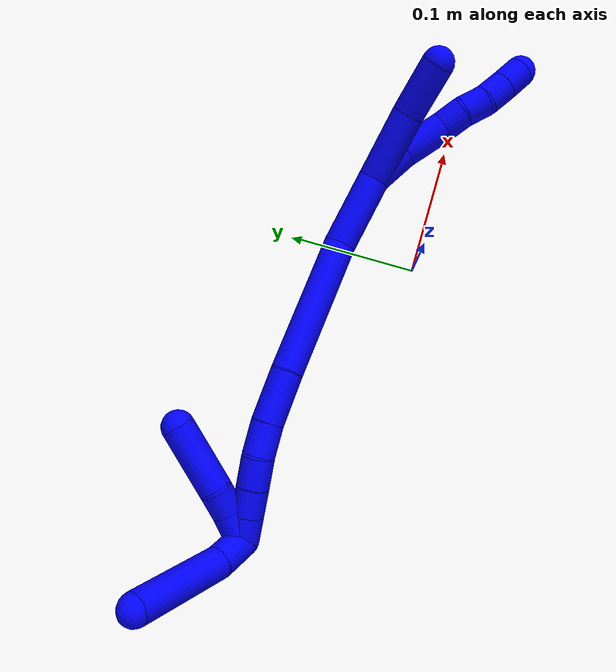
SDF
<sdf version="1.7">
 <world name="default">
  <model name="photoneo_s_sensor">
   <static>1</static>
   <pose>0 0 2 1.57079 1.57079 3.14159</pose>
   <link name="link">
    <inertial><mass>0.1</mass></inertial>
    <sensor name="sensor" type="depth">
     <update_rate>30</update_rate>
     <camera>
      <horizontal_fov>1.22</horizontal_fov>
      <image><width>1920</width><height>1200</height><format>B8G8R8</format></image>
      <clip><near>0.1</near><far>4</far></clip>
      <depth_camera><output>points</output></depth_camera>
     </camera>
     <plugin name="camera_plugin" filename="libgazebo_ros_depth_camera.so">
      <baseline>0.2</baseline>
      <alwaysOn>1</alwaysOn>
      <updateRate>0.0</updateRate>
      <cameraName>camera_ir</cameraName>
      <imageTopicName>/camera/color/image_raw</imageTopicName>
      <cameraInfoTopicName>/camera/color/camera_info</cameraInfoTopicName>
      <depthImageTopicName>/camera/depth/image_raw</depthImageTopicName>
      <depthImageCameraInfoTopicName>/camera/depth/camera_info</depthImageCameraInfoTopicName>
      <pointCloudTopicName>/camera/depth/points</pointCloudTopicName>
      <frameName>fr_optical</frameName>
      <pointCloudCutoff>0.1</pointCloudCutoff>
      <pointCloudCutoffMax>2.0</pointCloudCutoffMax>
      <distortionK1>0</distortionK1>
      <distortionK2>0</distortionK2>
      <distortionK3>0</distortionK3>
      <distortionT1>0</distortionT1>
      <distortionT2>0</distortionT2>
      <CxPrime>0</CxPrime>
      <Cx>0</Cx>
      <Cy>0</Cy>
      <focalLength>0</focalLength>
      <hackBaseline>0</hackBaseline>
     </plugin>
    </sensor>
   </link>
  </model>
  <model name="bin">
   <static>1</static>
   <link name="bottom">
    <collision name="collision-bottom">
     <pose>0 0 -0.01 0 -0 0</pose>
     <geometry><box><size>0.8 0.6 0.02</size></box></geometry>
     <surface>
      <friction><ode><mu>100</mu><mu2>100</mu2></ode></friction>
      <contact><collide_bitmask>65535</collide_bitmask></contact>
     </surface>
    </collision>
   </link>
   <link name="west_wall">
    <collision name="collision-west_wall">
     <pose>-0.41 0 0.1 0 -0 0</pose>
     <geometry><box><size>0.02 0.6 0.2</size></box></geometry>
     <surface>
      <friction><ode><mu>100</mu><mu2>100</mu2></ode></friction>
      <contact><collide_bitmask>65535</collide_bitmask></contact>
     </surface>
    </collision>
   </link>
   <link name="east_wall">
    <collision name="collision-east_wall">
     <pose>0.41 0 0.1 0 -0 0</pose>
     <geometry><box><size>0.02 0.6 0.2</size></box></geometry>
     <surface>
      <friction><ode><mu>100</mu><mu2>100</mu2></ode></friction>
      <contact><collide_bitmask>65535</collide_bitmask></contact>
     </surface>
    </collision>
   </link>
   <link name="south_wall">
    <collision name="collision-south_wall">
     <pose>0 -0.31 0.1 0 -0 0</pose>
     <geometry><box><size>0.8 0.02 0.2</size></box></geometry>
     <surface>
      <friction><ode><mu>100</mu><mu2>100</mu2></ode></friction>
      <contact><collide_bitmask>65535</collide_bitmask></contact>
     </surface>
    </collision>
   </link>
   <link name="north_wall">
    <collision name="collision-north_wall">
     <pose>0 0.31 0.1 0 -0 0</pose>
     <geometry><box><size>0.8 0.02 0.2</size></box></geometry>
     <surface>
      <friction><ode><mu>100</mu><mu2>100</mu2></ode></friction>
      <contact><collide_bitmask>65535</collide_bitmask></contact>
     </surface>
    </collision>
   </link>
  </model>
  <model name="1">
   <static>0</static>
   <link name="1">
    <collision name="collision-cylinder-e_1_2_8">
     <pose>0.004807 0.000513 -0.015629 -3.10876 0.298252 -2.9239</pose>
     <geometry><cylinder><radius>0.0125</radius><length>0.032719</length></cylinder></geometry>
     <surface>
      <friction><ode><mu>1.16</mu><mu2>1.16</mu2><slip1>0</slip1><slip2>0</slip2></ode></friction>
      <contact><ode><kp>1e+06</kp><kd>1</kd><max_vel>0</max_vel><min_depth>0.001</min_depth></ode></contact>
     </surface>
    </collision>
    <visual name="visual-cylinder-e_1_2_8">
     <pose>0.004807 0.000513 -0.015629 -3.10876 0.298252 -2.9239</pose>
     <geometry><cylinder><radius>0.0125</radius><length>0.032719</length></cylinder></geometry>
     <material><ambient>0 0 1 1</ambient></material>
    </visual>
    <collision name="collision-cylinder-e_2_8_9">
     <pose>0.016178 0.004783 -0.048291 -2.92452 0.359913 -2.0623</pose>
     <geometry><cylinder><radius>0.0125</radius><length>0.037274</length></cylinder></geometry>
     <surface>
      <friction><ode><mu>1.16</mu><mu2>1.16</mu2><slip1>0</slip1><slip2>0</slip2></ode></friction>
      <contact><ode><kp>1e+06</kp><kd>1</kd><max_vel>0</max_vel><min_depth>0.001</min_depth></ode></contact>
     </surface>
    </collision>
    <visual name="visual-cylinder-e_2_8_9">
     <pose>0.016178 0.004783 -0.048291 -2.92452 0.359913 -2.0623</pose>
     <geometry><cylinder><radius>0.0125</radius><length>0.037274</length></cylinder></geometry>
     <material><ambient>0 0 1 1</ambient></material>
    </visual>
    <collision name="collision-cylinder-e_3_9_10">
     <pose>0.025069 0.011528 -0.074582 -2.82934 0.23479 -1.28606</pose>
     <geometry><cylinder><radius>0.0125</radius><length>0.020004</length></cylinder></geometry>
     <surface>
      <friction><ode><mu>1.16</mu><mu2>1.16</mu2><slip1>0</slip1><slip2>0</slip2></ode></friction>
      <contact><ode><kp>1e+06</kp><kd>1</kd><max_vel>0</max_vel><min_depth>0.001</min_depth></ode></contact>
     </surface>
    </collision>
    <visual name="visual-cylinder-e_3_9_10">
     <pose>0.025069 0.011528 -0.074582 -2.82934 0.23479 -1.28606</pose>
     <geometry><cylinder><radius>0.0125</radius><length>0.020004</length></cylinder></geometry>
     <material><ambient>0 0 1 1</ambient></material>
    </visual>
    <collision name="collision-cylinder-e_4_10_11">
     <pose>0.031736 0.016926 -0.092522 -2.87096 0.448916 -2.06613</pose>
     <geometry><cylinder><radius>0.0125</radius><length>0.020002</length></cylinder></geometry>
     <surface>
      <friction><ode><mu>1.16</mu><mu2>1.16</mu2><slip1>0</slip1><slip2>0</slip2></ode></friction>
      <contact><ode><kp>1e+06</kp><kd>1</kd><max_vel>0</max_vel><min_depth>0.001</min_depth></ode></contact>
     </surface>
    </collision>
    <visual name="visual-cylinder-e_4_10_11">
     <pose>0.031736 0.016926 -0.092522 -2.87096 0.448916 -2.06613</pose>
     <geometry><cylinder><radius>0.0125</radius><length>0.020002</length></cylinder></geometry>
     <material><ambient>0 0 1 1</ambient></material>
    </visual>
    <collision name="collision-cylinder-e_5_11_12">
     <pose>0.039682 0.019347 -0.110531 -3.14026 0.368896 -3.13446</pose>
     <geometry><cylinder><radius>0.0125</radius><length>0.02</length></cylinder></geometry>
     <surface>
      <friction><ode><mu>1.16</mu><mu2>1.16</mu2><slip1>0</slip1><slip2>0</slip2></ode></friction>
      <contact><ode><kp>1e+06</kp><kd>1</kd><max_vel>0</max_vel><min_depth>0.001</min_depth></ode></contact>
     </surface>
    </collision>
    <visual name="visual-cylinder-e_5_11_12">
     <pose>0.039682 0.019347 -0.110531 -3.14026 0.368896 -3.13446</pose>
     <geometry><cylinder><radius>0.0125</radius><length>0.02</length></cylinder></geometry>
     <material><ambient>0 0 1 1</ambient></material>
    </visual>
    <collision name="collision-cylinder-e_6_12_6">
     <pose>0.046698 0.019055 -0.129254 3.10926 0.347968 2.95812</pose>
     <geometry><cylinder><radius>0.0125</radius><length>0.02</length></cylinder></geometry>
     <surface>
      <friction><ode><mu>1.16</mu><mu2>1.16</mu2><slip1>0</slip1><slip2>0</slip2></ode></friction>
      <contact><ode><kp>1e+06</kp><kd>1</kd><max_vel>0</max_vel><min_depth>0.001</min_depth></ode></contact>
     </surface>
    </collision>
    <visual name="visual-cylinder-e_6_12_6">
     <pose>0.046698 0.019055 -0.129254 3.10926 0.347968 2.95812</pose>
     <geometry><cylinder><radius>0.0125</radius><length>0.02</length></cylinder></geometry>
     <material><ambient>0 0 1 1</ambient></material>
    </visual>
    <collision name="collision-cylinder-e_1_2_13">
     <pose>-0.006639 0.005743 -0.026944 -2.93157 -0.23646 1.69008</pose>
     <geometry><cylinder><radius>0.0125</radius><length>0.056676</length></cylinder></geometry>
     <surface>
      <friction><ode><mu>1.16</mu><mu2>1.16</mu2><slip1>0</slip1><slip2>0</slip2></ode></friction>
      <contact><ode><kp>1e+06</kp><kd>1</kd><max_vel>0</max_vel><min_depth>0.001</min_depth></ode></contact>
     </surface>
    </collision>
    <visual name="visual-cylinder-e_1_2_13">
     <pose>-0.006639 0.005743 -0.026944 -2.93157 -0.23646 1.69008</pose>
     <geometry><cylinder><radius>0.0125</radius><length>0.056676</length></cylinder></geometry>
     <material><ambient>0 0 1 1</ambient></material>
    </visual>
    <collision name="collision-cylinder-e_2_13_5">
     <pose>-0.019449 0.019551 -0.073023 -2.74272 -0.288911 1.24766</pose>
     <geometry><cylinder><radius>0.0125</radius><length>0.043324</length></cylinder></geometry>
     <surface>
      <friction><ode><mu>1.16</mu><mu2>1.16</mu2><slip1>0</slip1><slip2>0</slip2></ode></friction>
      <contact><ode><kp>1e+06</kp><kd>1</kd><max_vel>0</max_vel><min_depth>0.001</min_depth></ode></contact>
     </surface>
    </collision>
    <visual name="visual-cylinder-e_2_13_5">
     <pose>-0.019449 0.019551 -0.073023 -2.74272 -0.288911 1.24766</pose>
     <geometry><cylinder><radius>0.0125</radius><length>0.043324</length></cylinder></geometry>
     <material><ambient>0 0 1 1</ambient></material>
    </visual>
    <collision name="collision-cylinder-e_1_2_14">
     <pose>0.00085 0.003593 0.029465 -0.121332 0.028628 -0.001739</pose>
     <geometry><cylinder><radius>0.0125</radius><length>0.059391</length></cylinder></geometry>
     <surface>
      <friction><ode><mu>1.16</mu><mu2>1.16</mu2><slip1>0</slip1><slip2>0</slip2></ode></friction>
      <contact><ode><kp>1e+06</kp><kd>1</kd><max_vel>0</max_vel><min_depth>0.001</min_depth></ode></contact>
     </surface>
    </collision>
    <visual name="visual-cylinder-e_1_2_14">
     <pose>0.00085 0.003593 0.029465 -0.121332 0.028628 -0.001739</pose>
     <geometry><cylinder><radius>0.0125</radius><length>0.059391</length></cylinder></geometry>
     <material><ambient>0 0 1 1</ambient></material>
    </visual>
    <collision name="collision-cylinder-e_2_14_15">
     <pose>0.00184 0.023548 0.110776 -0.305702 0.002573 -0.000396</pose>
     <geometry><cylinder><radius>0.0125</radius><length>0.108734</length></cylinder></geometry>
     <surface>
      <friction><ode><mu>1.16</mu><mu2>1.16</mu2><slip1>0</slip1><slip2>0</slip2></ode></friction>
      <contact><ode><kp>1e+06</kp><kd>1</kd><max_vel>0</max_vel><min_depth>0.001</min_depth></ode></contact>
     </surface>
    </collision>
    <visual name="visual-cylinder-e_2_14_15">
     <pose>0.00184 0.023548 0.110776 -0.305702 0.002573 -0.000396</pose>
     <geometry><cylinder><radius>0.0125</radius><length>0.108734</length></cylinder></geometry>
     <material><ambient>0 0 1 1</ambient></material>
    </visual>
    <collision name="collision-cylinder-e_3_15_16">
     <pose>0.003372 0.04522 0.182289 -0.263693 0.068227 -0.009051</pose>
     <geometry><cylinder><radius>0.0125</radius><length>0.040836</length></cylinder></geometry>
     <surface>
      <friction><ode><mu>1.16</mu><mu2>1.16</mu2><slip1>0</slip1><slip2>0</slip2></ode></friction>
      <contact><ode><kp>1e+06</kp><kd>1</kd><max_vel>0</max_vel><min_depth>0.001</min_depth></ode></contact>
     </surface>
    </collision>
    <visual name="visual-cylinder-e_3_15_16">
     <pose>0.003372 0.04522 0.182289 -0.263693 0.068227 -0.009051</pose>
     <geometry><cylinder><radius>0.0125</radius><length>0.040836</length></cylinder></geometry>
     <material><ambient>0 0 1 1</ambient></material>
    </visual>
    <collision name="collision-cylinder-e_4_16_17">
     <pose>0.00679 0.054354 0.214076 -0.305639 0.158083 -0.024398</pose>
     <geometry><cylinder><radius>0.0125</radius><length>0.025742</length></cylinder></geometry>
     <surface>
      <friction><ode><mu>1.16</mu><mu2>1.16</mu2><slip1>0</slip1><slip2>0</slip2></ode></friction>
      <contact><ode><kp>1e+06</kp><kd>1</kd><max_vel>0</max_vel><min_depth>0.001</min_depth></ode></contact>
     </surface>
    </collision>
    <visual name="visual-cylinder-e_4_16_17">
     <pose>0.00679 0.054354 0.214076 -0.305639 0.158083 -0.024398</pose>
     <geometry><cylinder><radius>0.0125</radius><length>0.025742</length></cylinder></geometry>
     <material><ambient>0 0 1 1</ambient></material>
    </visual>
    <collision name="collision-cylinder-e_5_17_18">
     <pose>0.012561 0.060519 0.23694 -0.214573 0.328263 -0.035671</pose>
     <geometry><cylinder><radius>0.0125</radius><length>0.023228</length></cylinder></geometry>
     <surface>
      <friction><ode><mu>1.16</mu><mu2>1.16</mu2><slip1>0</slip1><slip2>0</slip2></ode></friction>
      <contact><ode><kp>1e+06</kp><kd>1</kd><max_vel>0</max_vel><min_depth>0.001</min_depth></ode></contact>
     </surface>
    </collision>
    <visual name="visual-cylinder-e_5_17_18">
     <pose>0.012561 0.060519 0.23694 -0.214573 0.328263 -0.035671</pose>
     <geometry><cylinder><radius>0.0125</radius><length>0.023228</length></cylinder></geometry>
     <material><ambient>0 0 1 1</ambient></material>
    </visual>
    <collision name="collision-cylinder-e_6_18_19">
     <pose>0.019872 0.064526 0.257441 -0.169061 0.345837 -0.029597</pose>
     <geometry><cylinder><radius>0.0125</radius><length>0.021046</length></cylinder></geometry>
     <surface>
      <friction><ode><mu>1.16</mu><mu2>1.16</mu2><slip1>0</slip1><slip2>0</slip2></ode></friction>
      <contact><ode><kp>1e+06</kp><kd>1</kd><max_vel>0</max_vel><min_depth>0.001</min_depth></ode></contact>
     </surface>
    </collision>
    <visual name="visual-cylinder-e_6_18_19">
     <pose>0.019872 0.064526 0.257441 -0.169061 0.345837 -0.029597</pose>
     <geometry><cylinder><radius>0.0125</radius><length>0.021046</length></cylinder></geometry>
     <material><ambient>0 0 1 1</ambient></material>
    </visual>
    <collision name="collision-cylinder-e_7_19_1">
     <pose>0.027075 0.067786 0.276932 -0.162341 0.353214 -0.029034</pose>
     <geometry><cylinder><radius>0.0125</radius><length>0.021023</length></cylinder></geometry>
     <surface>
      <friction><ode><mu>1.16</mu><mu2>1.16</mu2><slip1>0</slip1><slip2>0</slip2></ode></friction>
      <contact><ode><kp>1e+06</kp><kd>1</kd><max_vel>0</max_vel><min_depth>0.001</min_depth></ode></contact>
     </surface>
    </collision>
    <visual name="visual-cylinder-e_7_19_1">
     <pose>0.027075 0.067786 0.276932 -0.162341 0.353214 -0.029034</pose>
     <geometry><cylinder><radius>0.0125</radius><length>0.021023</length></cylinder></geometry>
     <material><ambient>0 0 1 1</ambient></material>
    </visual>
    <collision name="collision-cylinder-e_1_1_20">
     <pose>0.021256 0.064294 0.279809 2.50335 -0.83642 -1.86298</pose>
     <geometry><cylinder><radius>0.0125</radius><length>0.025476</length></cylinder></geometry>
     <surface>
      <friction><ode><mu>1.16</mu><mu2>1.16</mu2><slip1>0</slip1><slip2>0</slip2></ode></friction>
      <contact><ode><kp>1e+06</kp><kd>1</kd><max_vel>0</max_vel><min_depth>0.001</min_depth></ode></contact>
     </surface>
    </collision>
    <visual name="visual-cylinder-e_1_1_20">
     <pose>0.021256 0.064294 0.279809 2.50335 -0.83642 -1.86298</pose>
     <geometry><cylinder><radius>0.0125</radius><length>0.025476</length></cylinder></geometry>
     <material><ambient>0 0 1 1</ambient></material>
    </visual>
    <collision name="collision-cylinder-e_2_20_21">
     <pose>0.003453 0.05642 0.267784 2.6469 -0.957673 -2.23614</pose>
     <geometry><cylinder><radius>0.0125</radius><length>0.020416</length></cylinder></geometry>
     <surface>
      <friction><ode><mu>1.16</mu><mu2>1.16</mu2><slip1>0</slip1><slip2>0</slip2></ode></friction>
      <contact><ode><kp>1e+06</kp><kd>1</kd><max_vel>0</max_vel><min_depth>0.001</min_depth></ode></contact>
     </surface>
    </collision>
    <visual name="visual-cylinder-e_2_20_21">
     <pose>0.003453 0.05642 0.267784 2.6469 -0.957673 -2.23614</pose>
     <geometry><cylinder><radius>0.0125</radius><length>0.020416</length></cylinder></geometry>
     <material><ambient>0 0 1 1</ambient></material>
    </visual>
    <collision name="collision-cylinder-e_3_21_4">
     <pose>-0.024912 0.040294 0.250229 2.31919 -0.832858 -1.585</pose>
     <geometry><cylinder><radius>0.0125</radius><length>0.054108</length></cylinder></geometry>
     <surface>
      <friction><ode><mu>1.16</mu><mu2>1.16</mu2><slip1>0</slip1><slip2>0</slip2></ode></friction>
      <contact><ode><kp>1e+06</kp><kd>1</kd><max_vel>0</max_vel><min_depth>0.001</min_depth></ode></contact>
     </surface>
    </collision>
    <visual name="visual-cylinder-e_3_21_4">
     <pose>-0.024912 0.040294 0.250229 2.31919 -0.832858 -1.585</pose>
     <geometry><cylinder><radius>0.0125</radius><length>0.054108</length></cylinder></geometry>
     <material><ambient>0 0 1 1</ambient></material>
    </visual>
    <collision name="collision-cylinder-e_1_1_22">
     <pose>0.021766 0.075423 0.294941 -0.630697 -0.717657 0.243509</pose>
     <geometry><cylinder><radius>0.0125</radius><length>0.027204</length></cylinder></geometry>
     <surface>
      <friction><ode><mu>1.16</mu><mu2>1.16</mu2><slip1>0</slip1><slip2>0</slip2></ode></friction>
      <contact><ode><kp>1e+06</kp><kd>1</kd><max_vel>0</max_vel><min_depth>0.001</min_depth></ode></contact>
     </surface>
    </collision>
    <visual name="visual-cylinder-e_1_1_22">
     <pose>0.021766 0.075423 0.294941 -0.630697 -0.717657 0.243509</pose>
     <geometry><cylinder><radius>0.0125</radius><length>0.027204</length></cylinder></geometry>
     <material><ambient>0 0 1 1</ambient></material>
    </visual>
    <collision name="collision-cylinder-e_2_22_3">
     <pose>-0.016298 0.094335 0.32086 -0.630212 -0.927323 0.323137</pose>
     <geometry><cylinder><radius>0.0125</radius><length>0.072796</length></cylinder></geometry>
     <surface>
      <friction><ode><mu>1.16</mu><mu2>1.16</mu2><slip1>0</slip1><slip2>0</slip2></ode></friction>
      <contact><ode><kp>1e+06</kp><kd>1</kd><max_vel>0</max_vel><min_depth>0.001</min_depth></ode></contact>
     </surface>
    </collision>
    <visual name="visual-cylinder-e_2_22_3">
     <pose>-0.016298 0.094335 0.32086 -0.630212 -0.927323 0.323137</pose>
     <geometry><cylinder><radius>0.0125</radius><length>0.072796</length></cylinder></geometry>
     <material><ambient>0 0 1 1</ambient></material>
    </visual>
    <collision name="collision-sphere-3">
     <pose>-0.045417 0.107204 0.338502 0 -0 0</pose>
     <geometry><sphere><radius>0.0125</radius></sphere></geometry>
     <surface>
      <friction><ode><mu>1.16</mu><mu2>1.16</mu2><slip1>0</slip1><slip2>0</slip2></ode></friction>
      <contact><ode><kp>1e+06</kp><kd>1</kd><max_vel>0</max_vel><min_depth>0.001</min_depth></ode></contact>
     </surface>
    </collision>
    <visual name="visual-sphere-3">
     <pose>-0.045417 0.107204 0.338502 0 -0 0</pose>
     <geometry><sphere><radius>0.0125</radius></sphere></geometry>
     <material><ambient>0 0 1 1</ambient></material>
    </visual>
    <collision name="collision-sphere-22">
     <pose>0.012821 0.081466 0.303217 0 -0 0</pose>
     <geometry><sphere><radius>0.0125</radius></sphere></geometry>
     <surface>
      <friction><ode><mu>1.16</mu><mu2>1.16</mu2><slip1>0</slip1><slip2>0</slip2></ode></friction>
      <contact><ode><kp>1e+06</kp><kd>1</kd><max_vel>0</max_vel><min_depth>0.001</min_depth></ode></contact>
     </surface>
    </collision>
    <visual name="visual-sphere-22">
     <pose>0.012821 0.081466 0.303217 0 -0 0</pose>
     <geometry><sphere><radius>0.0125</radius></sphere></geometry>
     <material><ambient>0 0 1 1</ambient></material>
    </visual>
    <collision name="collision-sphere-4">
     <pose>-0.044928 0.026956 0.237844 0 -0 0</pose>
     <geometry><sphere><radius>0.0125</radius></sphere></geometry>
     <surface>
      <friction><ode><mu>1.16</mu><mu2>1.16</mu2><slip1>0</slip1><slip2>0</slip2></ode></friction>
      <contact><ode><kp>1e+06</kp><kd>1</kd><max_vel>0</max_vel><min_depth>0.001</min_depth></ode></contact>
     </surface>
    </collision>
    <visual name="visual-sphere-4">
     <pose>-0.044928 0.026956 0.237844 0 -0 0</pose>
     <geometry><sphere><radius>0.0125</radius></sphere></geometry>
     <material><ambient>0 0 1 1</ambient></material>
    </visual>
    <collision name="collision-sphere-21">
     <pose>-0.004896 0.053631 0.262614 0 -0 0</pose>
     <geometry><sphere><radius>0.0125</radius></sphere></geometry>
     <surface>
      <friction><ode><mu>1.16</mu><mu2>1.16</mu2><slip1>0</slip1><slip2>0</slip2></ode></friction>
      <contact><ode><kp>1e+06</kp><kd>1</kd><max_vel>0</max_vel><min_depth>0.001</min_depth></ode></contact>
     </surface>
    </collision>
    <visual name="visual-sphere-21">
     <pose>-0.004896 0.053631 0.262614 0 -0 0</pose>
     <geometry><sphere><radius>0.0125</radius></sphere></geometry>
     <material><ambient>0 0 1 1</ambient></material>
    </visual>
    <collision name="collision-sphere-20">
     <pose>0.011802 0.059208 0.272954 0 -0 0</pose>
     <geometry><sphere><radius>0.0125</radius></sphere></geometry>
     <surface>
      <friction><ode><mu>1.16</mu><mu2>1.16</mu2><slip1>0</slip1><slip2>0</slip2></ode></friction>
      <contact><ode><kp>1e+06</kp><kd>1</kd><max_vel>0</max_vel><min_depth>0.001</min_depth></ode></contact>
     </surface>
    </collision>
    <visual name="visual-sphere-20">
     <pose>0.011802 0.059208 0.272954 0 -0 0</pose>
     <geometry><sphere><radius>0.0125</radius></sphere></geometry>
     <material><ambient>0 0 1 1</ambient></material>
    </visual>
    <collision name="collision-sphere-12">
     <pose>0.043288 0.019359 -0.119858 0 -0 0</pose>
     <geometry><sphere><radius>0.0125</radius></sphere></geometry>
     <surface>
      <friction><ode><mu>1.16</mu><mu2>1.16</mu2><slip1>0</slip1><slip2>0</slip2></ode></friction>
      <contact><ode><kp>1e+06</kp><kd>1</kd><max_vel>0</max_vel><min_depth>0.001</min_depth></ode></contact>
     </surface>
    </collision>
    <visual name="visual-sphere-12">
     <pose>0.043288 0.019359 -0.119858 0 -0 0</pose>
     <geometry><sphere><radius>0.0125</radius></sphere></geometry>
     <material><ambient>0 0 1 1</ambient></material>
    </visual>
    <collision name="collision-sphere-11">
     <pose>0.036077 0.019334 -0.101204 0 -0 0</pose>
     <geometry><sphere><radius>0.0125</radius></sphere></geometry>
     <surface>
      <friction><ode><mu>1.16</mu><mu2>1.16</mu2><slip1>0</slip1><slip2>0</slip2></ode></friction>
      <contact><ode><kp>1e+06</kp><kd>1</kd><max_vel>0</max_vel><min_depth>0.001</min_depth></ode></contact>
     </surface>
    </collision>
    <visual name="visual-sphere-11">
     <pose>0.036077 0.019334 -0.101204 0 -0 0</pose>
     <geometry><sphere><radius>0.0125</radius></sphere></geometry>
     <material><ambient>0 0 1 1</ambient></material>
    </visual>
    <collision name="collision-sphere-10">
     <pose>0.027396 0.014517 -0.08384 0 -0 0</pose>
     <geometry><sphere><radius>0.0125</radius></sphere></geometry>
     <surface>
      <friction><ode><mu>1.16</mu><mu2>1.16</mu2><slip1>0</slip1><slip2>0</slip2></ode></friction>
      <contact><ode><kp>1e+06</kp><kd>1</kd><max_vel>0</max_vel><min_depth>0.001</min_depth></ode></contact>
     </surface>
    </collision>
    <visual name="visual-sphere-10">
     <pose>0.027396 0.014517 -0.08384 0 -0 0</pose>
     <geometry><sphere><radius>0.0125</radius></sphere></geometry>
     <material><ambient>0 0 1 1</ambient></material>
    </visual>
    <collision name="collision-sphere-9">
     <pose>0.022742 0.00854 -0.065325 0 -0 0</pose>
     <geometry><sphere><radius>0.0125</radius></sphere></geometry>
     <surface>
      <friction><ode><mu>1.16</mu><mu2>1.16</mu2><slip1>0</slip1><slip2>0</slip2></ode></friction>
      <contact><ode><kp>1e+06</kp><kd>1</kd><max_vel>0</max_vel><min_depth>0.001</min_depth></ode></contact>
     </surface>
    </collision>
    <visual name="visual-sphere-9">
     <pose>0.022742 0.00854 -0.065325 0 -0 0</pose>
     <geometry><sphere><radius>0.0125</radius></sphere></geometry>
     <material><ambient>0 0 1 1</ambient></material>
    </visual>
    <collision name="collision-sphere-2">
     <geometry><sphere><radius>0.0125</radius></sphere></geometry>
     <surface>
      <friction><ode><mu>1.16</mu><mu2>1.16</mu2><slip1>0</slip1><slip2>0</slip2></ode></friction>
      <contact><ode><kp>1e+06</kp><kd>1</kd><max_vel>0</max_vel><min_depth>0.001</min_depth></ode></contact>
     </surface>
    </collision>
    <visual name="visual-sphere-2">
     <geometry><sphere><radius>0.0125</radius></sphere></geometry>
     <material><ambient>0 0 1 1</ambient></material>
    </visual>
    <collision name="collision-sphere-19">
     <pose>0.023439 0.066192 0.267199 0 -0 0</pose>
     <geometry><sphere><radius>0.0125</radius></sphere></geometry>
     <surface>
      <friction><ode><mu>1.16</mu><mu2>1.16</mu2><slip1>0</slip1><slip2>0</slip2></ode></friction>
      <contact><ode><kp>1e+06</kp><kd>1</kd><max_vel>0</max_vel><min_depth>0.001</min_depth></ode></contact>
     </surface>
    </collision>
    <visual name="visual-sphere-19">
     <pose>0.023439 0.066192 0.267199 0 -0 0</pose>
     <geometry><sphere><radius>0.0125</radius></sphere></geometry>
     <material><ambient>0 0 1 1</ambient></material>
    </visual>
    <collision name="collision-sphere-8">
     <pose>0.009614 0.001027 -0.031258 0 -0 0</pose>
     <geometry><sphere><radius>0.0125</radius></sphere></geometry>
     <surface>
      <friction><ode><mu>1.16</mu><mu2>1.16</mu2><slip1>0</slip1><slip2>0</slip2></ode></friction>
      <contact><ode><kp>1e+06</kp><kd>1</kd><max_vel>0</max_vel><min_depth>0.001</min_depth></ode></contact>
     </surface>
    </collision>
    <visual name="visual-sphere-8">
     <pose>0.009614 0.001027 -0.031258 0 -0 0</pose>
     <geometry><sphere><radius>0.0125</radius></sphere></geometry>
     <material><ambient>0 0 1 1</ambient></material>
    </visual>
    <collision name="collision-sphere-6">
     <pose>0.050108 0.018751 -0.13865 0 -0 0</pose>
     <geometry><sphere><radius>0.0125</radius></sphere></geometry>
     <surface>
      <friction><ode><mu>1.16</mu><mu2>1.16</mu2><slip1>0</slip1><slip2>0</slip2></ode></friction>
      <contact><ode><kp>1e+06</kp><kd>1</kd><max_vel>0</max_vel><min_depth>0.001</min_depth></ode></contact>
     </surface>
    </collision>
    <visual name="visual-sphere-6">
     <pose>0.050108 0.018751 -0.13865 0 -0 0</pose>
     <geometry><sphere><radius>0.0125</radius></sphere></geometry>
     <material><ambient>0 0 1 1</ambient></material>
    </visual>
    <collision name="collision-sphere-13">
     <pose>-0.013277 0.011487 -0.053888 0 -0 0</pose>
     <geometry><sphere><radius>0.0125</radius></sphere></geometry>
     <surface>
      <friction><ode><mu>1.16</mu><mu2>1.16</mu2><slip1>0</slip1><slip2>0</slip2></ode></friction>
      <contact><ode><kp>1e+06</kp><kd>1</kd><max_vel>0</max_vel><min_depth>0.001</min_depth></ode></contact>
     </surface>
    </collision>
    <visual name="visual-sphere-13">
     <pose>-0.013277 0.011487 -0.053888 0 -0 0</pose>
     <geometry><sphere><radius>0.0125</radius></sphere></geometry>
     <material><ambient>0 0 1 1</ambient></material>
    </visual>
    <collision name="collision-sphere-5">
     <pose>-0.02562 0.027616 -0.092157 0 -0 0</pose>
     <geometry><sphere><radius>0.0125</radius></sphere></geometry>
     <surface>
      <friction><ode><mu>1.16</mu><mu2>1.16</mu2><slip1>0</slip1><slip2>0</slip2></ode></friction>
      <contact><ode><kp>1e+06</kp><kd>1</kd><max_vel>0</max_vel><min_depth>0.001</min_depth></ode></contact>
     </surface>
    </collision>
    <visual name="visual-sphere-5">
     <pose>-0.02562 0.027616 -0.092157 0 -0 0</pose>
     <geometry><sphere><radius>0.0125</radius></sphere></geometry>
     <material><ambient>0 0 1 1</ambient></material>
    </visual>
    <collision name="collision-sphere-14">
     <pose>0.0017 0.007185 0.05893 0 -0 0</pose>
     <geometry><sphere><radius>0.0125</radius></sphere></geometry>
     <surface>
      <friction><ode><mu>1.16</mu><mu2>1.16</mu2><slip1>0</slip1><slip2>0</slip2></ode></friction>
      <contact><ode><kp>1e+06</kp><kd>1</kd><max_vel>0</max_vel><min_depth>0.001</min_depth></ode></contact>
     </surface>
    </collision>
    <visual name="visual-sphere-14">
     <pose>0.0017 0.007185 0.05893 0 -0 0</pose>
     <geometry><sphere><radius>0.0125</radius></sphere></geometry>
     <material><ambient>0 0 1 1</ambient></material>
    </visual>
    <collision name="collision-sphere-15">
     <pose>0.00198 0.03991 0.162622 0 -0 0</pose>
     <geometry><sphere><radius>0.0125</radius></sphere></geometry>
     <surface>
      <friction><ode><mu>1.16</mu><mu2>1.16</mu2><slip1>0</slip1><slip2>0</slip2></ode></friction>
      <contact><ode><kp>1e+06</kp><kd>1</kd><max_vel>0</max_vel><min_depth>0.001</min_depth></ode></contact>
     </surface>
    </collision>
    <visual name="visual-sphere-15">
     <pose>0.00198 0.03991 0.162622 0 -0 0</pose>
     <geometry><sphere><radius>0.0125</radius></sphere></geometry>
     <material><ambient>0 0 1 1</ambient></material>
    </visual>
    <collision name="collision-sphere-16">
     <pose>0.004764 0.050529 0.201955 0 -0 0</pose>
     <geometry><sphere><radius>0.0125</radius></sphere></geometry>
     <surface>
      <friction><ode><mu>1.16</mu><mu2>1.16</mu2><slip1>0</slip1><slip2>0</slip2></ode></friction>
      <contact><ode><kp>1e+06</kp><kd>1</kd><max_vel>0</max_vel><min_depth>0.001</min_depth></ode></contact>
     </surface>
    </collision>
    <visual name="visual-sphere-16">
     <pose>0.004764 0.050529 0.201955 0 -0 0</pose>
     <geometry><sphere><radius>0.0125</radius></sphere></geometry>
     <material><ambient>0 0 1 1</ambient></material>
    </visual>
    <collision name="collision-sphere-17">
     <pose>0.008816 0.058178 0.226198 0 -0 0</pose>
     <geometry><sphere><radius>0.0125</radius></sphere></geometry>
     <surface>
      <friction><ode><mu>1.16</mu><mu2>1.16</mu2><slip1>0</slip1><slip2>0</slip2></ode></friction>
      <contact><ode><kp>1e+06</kp><kd>1</kd><max_vel>0</max_vel><min_depth>0.001</min_depth></ode></contact>
     </surface>
    </collision>
    <visual name="visual-sphere-17">
     <pose>0.008816 0.058178 0.226198 0 -0 0</pose>
     <geometry><sphere><radius>0.0125</radius></sphere></geometry>
     <material><ambient>0 0 1 1</ambient></material>
    </visual>
    <collision name="collision-sphere-18">
     <pose>0.016305 0.06286 0.247682 0 -0 0</pose>
     <geometry><sphere><radius>0.0125</radius></sphere></geometry>
     <surface>
      <friction><ode><mu>1.16</mu><mu2>1.16</mu2><slip1>0</slip1><slip2>0</slip2></ode></friction>
      <contact><ode><kp>1e+06</kp><kd>1</kd><max_vel>0</max_vel><min_depth>0.001</min_depth></ode></contact>
     </surface>
    </collision>
    <visual name="visual-sphere-18">
     <pose>0.016305 0.06286 0.247682 0 -0 0</pose>
     <geometry><sphere><radius>0.0125</radius></sphere></geometry>
     <material><ambient>0 0 1 1</ambient></material>
    </visual>
    <collision name="collision-sphere-1">
     <pose>0.030711 0.06938 0.286665 0 -0 0</pose>
     <geometry><sphere><radius>0.0125</radius></sphere></geometry>
     <surface>
      <friction><ode><mu>1.16</mu><mu2>1.16</mu2><slip1>0</slip1><slip2>0</slip2></ode></friction>
      <contact><ode><kp>1e+06</kp><kd>1</kd><max_vel>0</max_vel><min_depth>0.001</min_depth></ode></contact>
     </surface>
    </collision>
    <visual name="visual-sphere-1">
     <pose>0.030711 0.06938 0.286665 0 -0 0</pose>
     <geometry><sphere><radius>0.0125</radius></sphere></geometry>
     <material><ambient>0 0 1 1</ambient></material>
    </visual>
    <inertial>
     <pose>0.00389 0.035736 0.114492 0 -0 0</pose>
     <mass>0.75</mass>
     <inertia><ixx>0.000161</ixx><ixy>0</ixy><ixz>0</ixz><iyy>0.000217</iyy><iyz>0</iyz><izz>-6e-06</izz></inertia>
    </inertial>
   </link>
   <pose>0.060355 0.049039 0.014283 1.72955 0.710639 -1.76713</pose>
  </model>
 </world>
</sdf>
